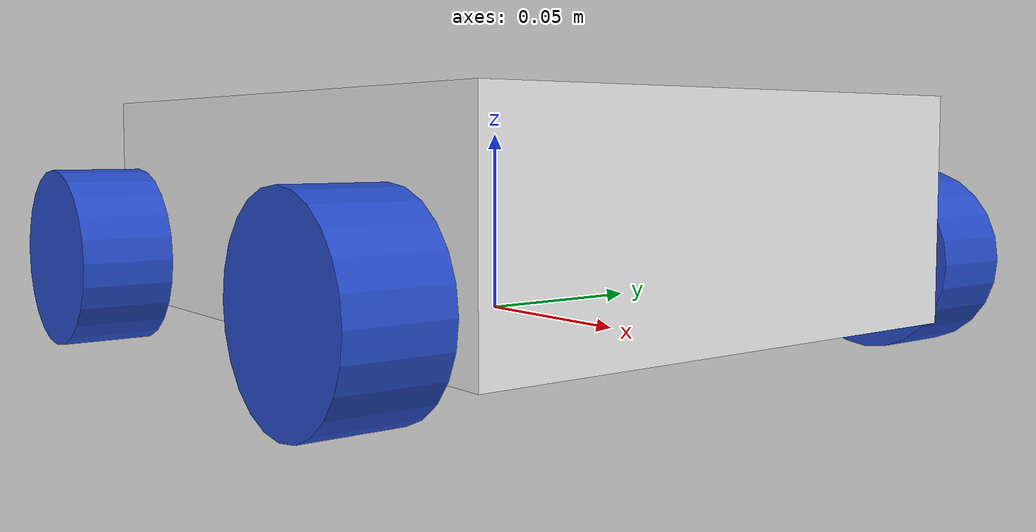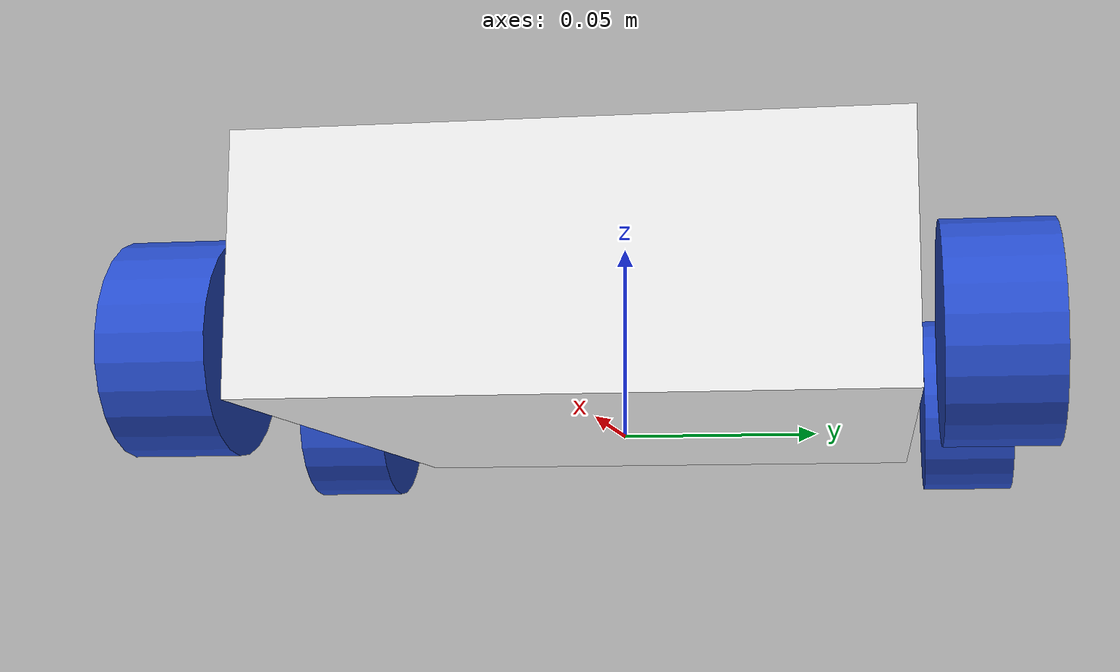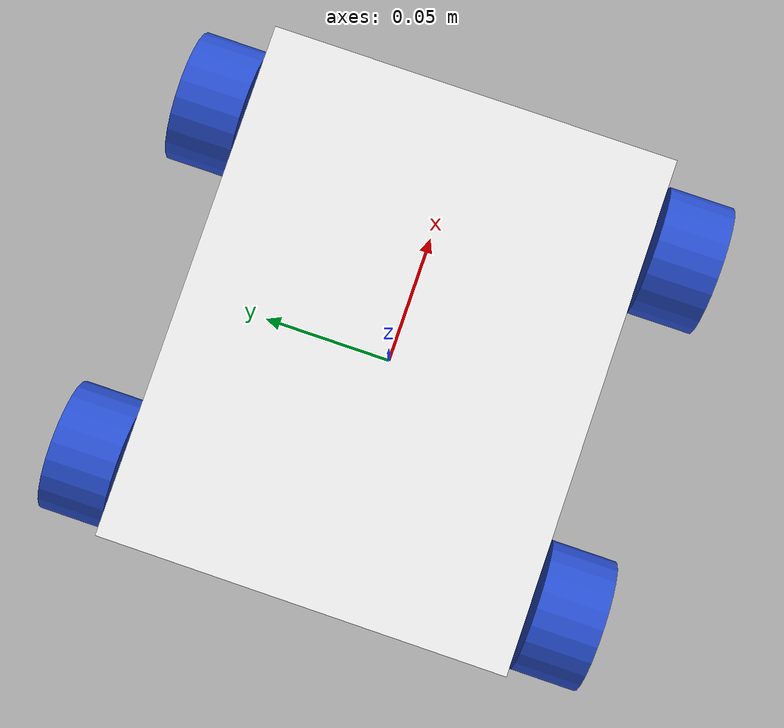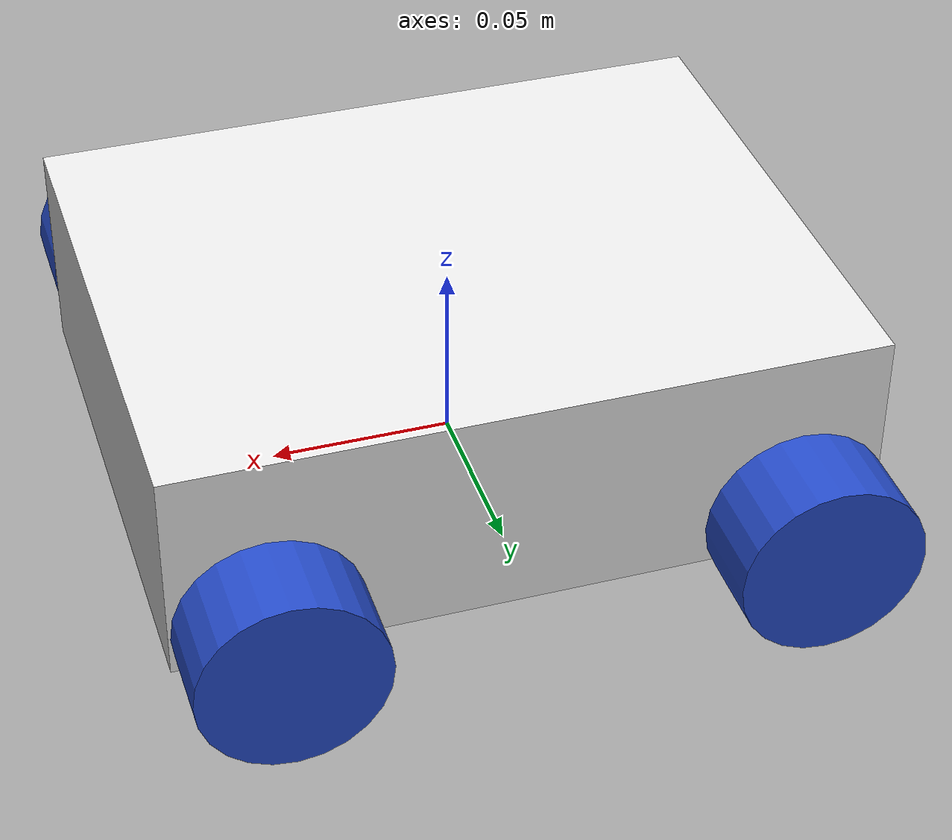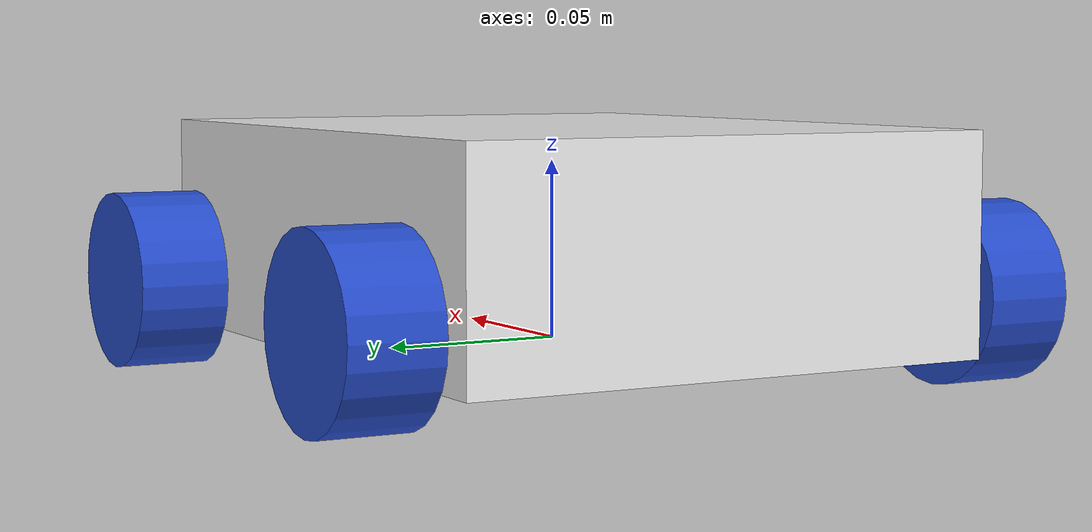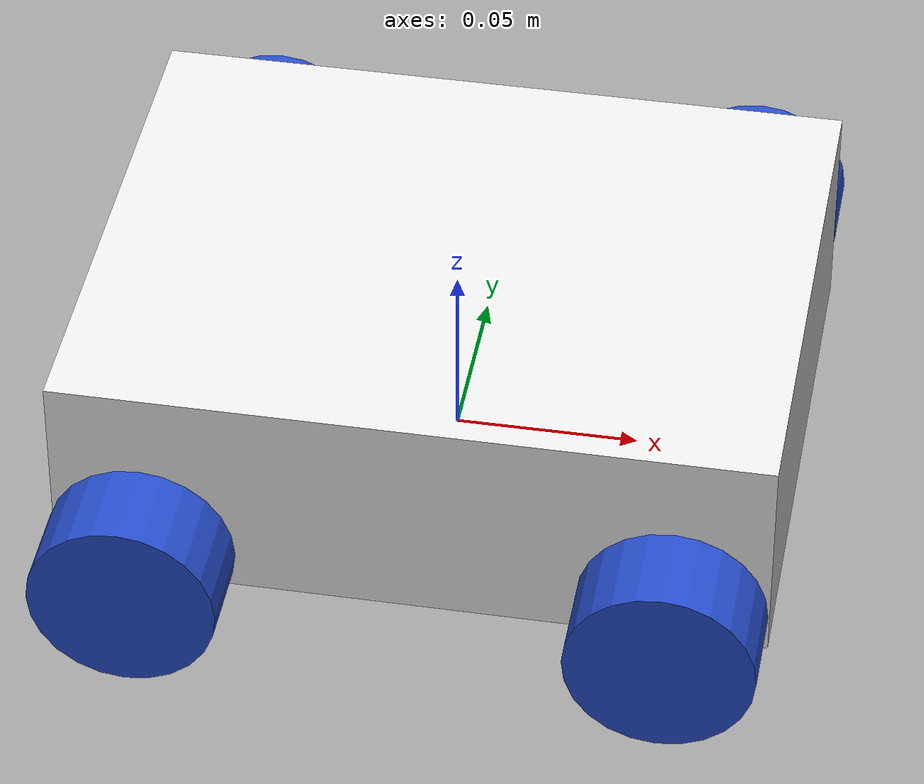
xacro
<?xml version="1.0"?>
<robot xmlns:xacro="http://www.ros.org/wiki/xacro">
	<link name="base_link">
	</link>
	<joint name="chassis_joint" type="fixed">
	    <parent link="base_link"/>
	    <child link="chassis"/>
	    <origin xyz="0.0 0.0 0"/>
	</joint>

	<link name="chassis">
	    <visual>
	        <origin xyz="0.0 0.0 0.03" rpy="0 0 0"/>
	        <geometry>
	            <box size="0.19 0.15 0.06"/>
	        </geometry>
	        <material name="white"/>
	    </visual>
	</link>

<!-- LEFT F WHEEL -->
<joint name="left_f_wheel_joint" type="continuous">
    <parent link="chassis"/>
    <child link="left_f_wheel"/>
    <origin xyz="-0.07 0.092 0.015" rpy="-${pi/2} 0 0"/>

    <axis xyz="0 0 1"/>
</joint>

<link name="left_f_wheel">
    <visual>
        <geometry>
            <cylinder length="0.025" radius="0.025" />
        </geometry>
        <material name="blue"/>
    </visual>
</link>

<!-- LEFT B WHEEL -->
<joint name="left_b_wheel_joint" type="continuous">
    <parent link="chassis"/>
    <child link="left_b_wheel"/>
    <origin xyz="0.07 0.092 0.015" rpy="-${pi/2} 0 0"/>
    <axis xyz="0 0 1"/>
</joint>

<link name="left_b_wheel">
    <visual>
        <geometry>
            <cylinder length="0.025" radius="0.025" />
        </geometry>
        <material name="blue"/>
    </visual>
</link>

<!-- RIGHT F WHEEL -->
<joint name="right_f_wheel_joint" type="continuous">
    <parent link="chassis"/>
    <child link="right_f_wheel"/>
    <origin xyz="-0.07 -0.092 0.015" rpy="-${pi/2} 0 0"/>

    <axis xyz="0 0 1"/>
</joint>

<link name="right_f_wheel">
    <visual>
        <geometry>
            <cylinder length="0.025" radius="0.025" />
        </geometry>
        <material name="blue"/>
    </visual>
</link>

<!-- RIGHT B WHEEL -->
<joint name="right_b_wheel_joint" type="continuous">
    <parent link="chassis"/>
    <child link="right_b_wheel"/>
    <origin xyz="0.07 -0.092 0.015" rpy="-${pi/2} 0 0"/>
    <axis xyz="0 0 1"/>
</joint>

<link name="right_b_wheel">
    <visual>
        <geometry>
            <cylinder length="0.025" radius="0.025" />
        </geometry>
        <material name="blue"/>
    </visual>
</link>

</robot>
